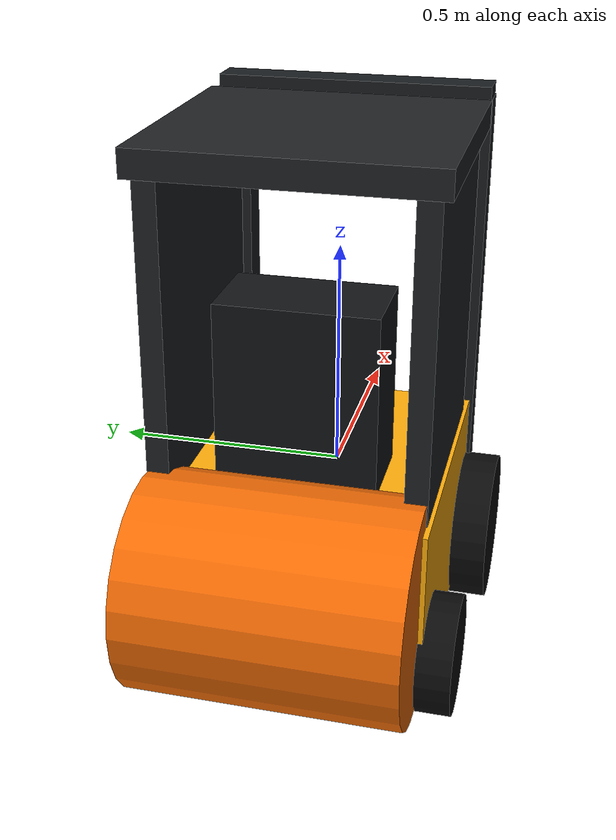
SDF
<?xml version="1.0"?>
<sdf version="1.6">
  <!-- Standalone preview model; the launch stack uses localized_vehicle.sdf.in. -->
  <model name="traffic_forklift">
    <link name="body">
      <inertial>
        <mass>900</mass>
        <inertia><ixx>85</ixx><iyy>140</iyy><izz>170</izz></inertia>
      </inertial>
      <collision name="forklift_envelope">
        <pose>0.10 0 0.22 0 0 0</pose>
        <geometry><box><size>1.25 0.66 1.04</size></box></geometry>
      </collision>
      <visual name="power_unit">
        <pose>-0.20 0 -0.06 0 0 0</pose>
        <geometry><box><size>0.62 0.56 0.38</size></box></geometry>
        <material><ambient>0.95 0.55 0.03 1</ambient><diffuse>1 0.68 0.04 1</diffuse></material>
      </visual>
      <visual name="rear_counterweight">
        <pose>-0.50 0 -0.04 1.5708 0 0</pose>
        <geometry><cylinder><radius>0.22</radius><length>0.54</length></cylinder></geometry>
        <material><ambient>0.82 0.31 0.02 1</ambient><diffuse>0.95 0.42 0.02 1</diffuse></material>
      </visual>
      <visual name="seat">
        <pose>-0.30 0 0.31 0 0 0</pose>
        <geometry><box><size>0.18 0.32 0.38</size></box></geometry>
        <material><ambient>0.04 0.05 0.06 1</ambient><diffuse>0.07 0.08 0.09 1</diffuse></material>
      </visual>
      <visual name="left_guard">
        <pose>-0.21 0.25 0.42 0 0 0</pose>
        <geometry><box><size>0.52 0.045 0.72</size></box></geometry>
        <material><ambient>0.08 0.09 0.10 1</ambient><diffuse>0.12 0.13 0.14 1</diffuse></material>
      </visual>
      <visual name="right_guard">
        <pose>-0.21 -0.25 0.42 0 0 0</pose>
        <geometry><box><size>0.52 0.045 0.72</size></box></geometry>
        <material><ambient>0.08 0.09 0.10 1</ambient><diffuse>0.12 0.13 0.14 1</diffuse></material>
      </visual>
      <visual name="overhead_guard">
        <pose>-0.215 0 0.78 0 0 0</pose>
        <geometry><box><size>0.54 0.58 0.055</size></box></geometry>
        <material><ambient>0.08 0.09 0.10 1</ambient><diffuse>0.12 0.13 0.14 1</diffuse></material>
      </visual>
      <visual name="mast_left">
        <pose>0.13 0.255 0.34 0 0 0</pose>
        <geometry><box><size>0.065 0.065 0.92</size></box></geometry>
        <material><ambient>0.06 0.07 0.08 1</ambient><diffuse>0.10 0.11 0.12 1</diffuse></material>
      </visual>
      <visual name="mast_right">
        <pose>0.13 -0.255 0.34 0 0 0</pose>
        <geometry><box><size>0.065 0.065 0.92</size></box></geometry>
        <material><ambient>0.06 0.07 0.08 1</ambient><diffuse>0.10 0.11 0.12 1</diffuse></material>
      </visual>
      <visual name="mast_top">
        <pose>0.13 0 0.79 0 0 0</pose>
        <geometry><box><size>0.075 0.57 0.07</size></box></geometry>
        <material><ambient>0.06 0.07 0.08 1</ambient><diffuse>0.10 0.11 0.12 1</diffuse></material>
      </visual>
      <visual name="fork_carriage">
        <pose>0.17 0 -0.10 0 0 0</pose>
        <geometry><box><size>0.09 0.51 0.16</size></box></geometry>
        <material><ambient>0.10 0.11 0.12 1</ambient><diffuse>0.17 0.18 0.19 1</diffuse></material>
      </visual>
      <visual name="left_fork">
        <pose>0.43 0.17 -0.265 0 0 0</pose>
        <geometry><box><size>0.56 0.065 0.055</size></box></geometry>
        <material><ambient>0.22 0.23 0.24 1</ambient><diffuse>0.38 0.40 0.42 1</diffuse></material>
      </visual>
      <visual name="right_fork">
        <pose>0.43 -0.17 -0.265 0 0 0</pose>
        <geometry><box><size>0.56 0.065 0.055</size></box></geometry>
        <material><ambient>0.22 0.23 0.24 1</ambient><diffuse>0.38 0.40 0.42 1</diffuse></material>
      </visual>
      <visual name="front_left_wheel">
        <pose>0.04 0.31 -0.15 1.5708 0 0</pose>
        <geometry><cylinder><radius>0.16</radius><length>0.09</length></cylinder></geometry>
        <material><ambient>0.025 0.025 0.025 1</ambient><diffuse>0.04 0.04 0.04 1</diffuse></material>
      </visual>
      <visual name="front_right_wheel">
        <pose>0.04 -0.31 -0.15 1.5708 0 0</pose>
        <geometry><cylinder><radius>0.16</radius><length>0.09</length></cylinder></geometry>
        <material><ambient>0.025 0.025 0.025 1</ambient><diffuse>0.04 0.04 0.04 1</diffuse></material>
      </visual>
      <visual name="rear_left_wheel">
        <pose>-0.42 0.30 -0.18 1.5708 0 0</pose>
        <geometry><cylinder><radius>0.12</radius><length>0.08</length></cylinder></geometry>
        <material><ambient>0.025 0.025 0.025 1</ambient><diffuse>0.04 0.04 0.04 1</diffuse></material>
      </visual>
      <visual name="rear_right_wheel">
        <pose>-0.42 -0.30 -0.18 1.5708 0 0</pose>
        <geometry><cylinder><radius>0.12</radius><length>0.08</length></cylinder></geometry>
        <material><ambient>0.025 0.025 0.025 1</ambient><diffuse>0.04 0.04 0.04 1</diffuse></material>
      </visual>
    </link>
    <plugin name="planar_move" filename="libgazebo_ros_planar_move.so">
      <update_rate>50</update_rate>
      <publish_rate>10</publish_rate>
      <publish_odom>false</publish_odom>
      <publish_odom_tf>false</publish_odom_tf>
      <odometry_frame>odom</odometry_frame>
      <robot_base_frame>body</robot_base_frame>
    </plugin>
  </model>
</sdf>
